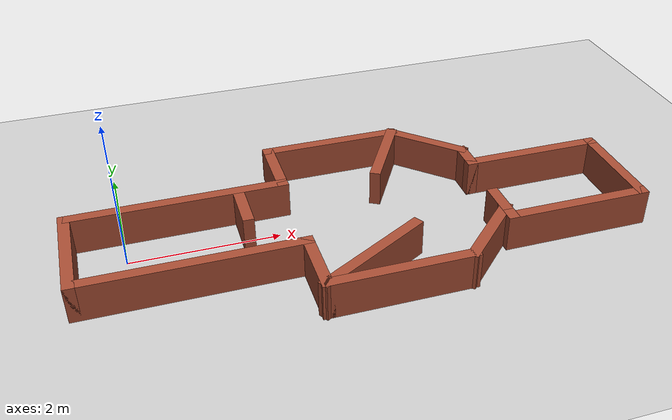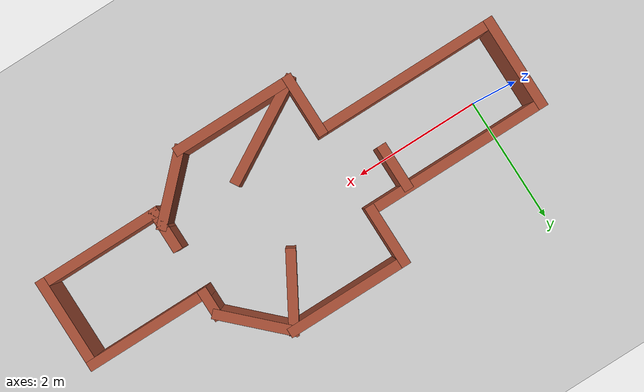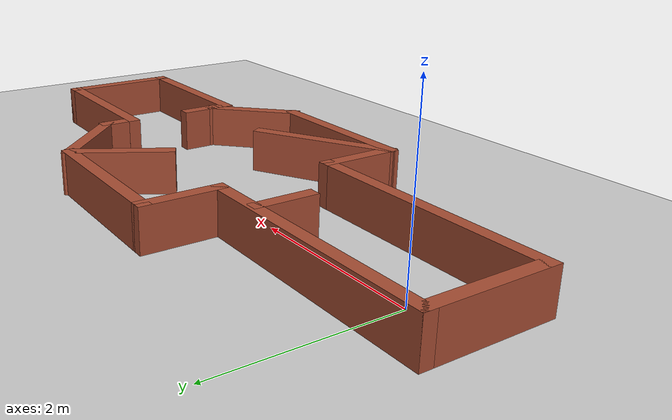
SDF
<sdf version="1.4">
  <world name="default">

    <scene>
      <ambient>0.4 0.4 0.4 1</ambient>
      <background>0.7 0.7 0.7 1</background>
      <shadows>true</shadows>
    </scene>

    <!-- A global light source -->
    <include>
      <uri>model://sun</uri>
    </include>

    <!-- A ground plane -->
    <include>
      <uri>model://ground_plane</uri>
    </include>

    <!-- Our world -->
    <include>
      <uri>model://room0</uri>
    </include>

    <physics type="ode">
      <real_time_update_rate>1000.0</real_time_update_rate>
      <max_step_size>0.001</max_step_size>
      <real_time_factor>1</real_time_factor>
      <ode>
        <solver>
          <type>quick</type>
          <iters>150</iters>
          <precon_iters>0</precon_iters>
          <sor>1.400000</sor>
          <use_dynamic_moi_rescaling>1</use_dynamic_moi_rescaling>
        </solver>
        <constraints>
          <cfm>0.00001</cfm>
          <erp>0.2</erp>
          <contact_max_correcting_vel>2000.000000</contact_max_correcting_vel>
          <contact_surface_layer>0.01000</contact_surface_layer>
        </constraints>
      </ode>
    </physics>
  </world>

</sdf>

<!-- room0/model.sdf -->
<sdf version='1.7'>
  <model name='room0'>
    <pose>3.00605 -0.176959 0 0 -0 0</pose>
    <link name='Wall_14'>
      <collision name='Wall_14_Collision'>
        <geometry>
          <box>
            <size>1 0.15 0.5</size>
          </box>
        </geometry>
        <pose>0 0 0.25 0 -0 0</pose>
      </collision>
      <visual name='Wall_14_Visual'>
        <pose>0 0 0.25 0 -0 0</pose>
        <geometry>
          <box>
            <size>1 0.15 0.5</size>
          </box>
        </geometry>
        <material>
          <script>
            <uri>file://media/materials/scripts/gazebo.material</uri>
            <name>Gazebo/Bricks</name>
          </script>
          <ambient>1 1 1 1</ambient>
        </material>
        <meta>
          <layer>0</layer>
        </meta>
      </visual>
      <pose>-0.834046 -1.10004 0 0 -0 -1.5708</pose>
    </link>
    <link name='Wall_19'>
      <collision name='Wall_19_Collision'>
        <geometry>
          <box>
            <size>1 0.15 0.5</size>
          </box>
        </geometry>
        <pose>0 0 0.25 0 -0 0</pose>
      </collision>
      <visual name='Wall_19_Visual'>
        <pose>0 0 0.25 0 -0 0</pose>
        <geometry>
          <box>
            <size>1 0.15 0.5</size>
          </box>
        </geometry>
        <material>
          <script>
            <uri>file://media/materials/scripts/gazebo.material</uri>
            <name>Gazebo/Bricks</name>
          </script>
          <ambient>1 1 1 1</ambient>
        </material>
        <meta>
          <layer>0</layer>
        </meta>
      </visual>
      <pose>-0.834046 1.09996 0 0 -0 1.5708</pose>
    </link>
    <link name='Wall_20'>
      <collision name='Wall_20_Collision'>
        <geometry>
          <box>
            <size>2 0.15 0.5</size>
          </box>
        </geometry>
        <pose>0 0 0.25 0 -0 0</pose>
      </collision>
      <visual name='Wall_20_Visual'>
        <pose>0 0 0.25 0 -0 0</pose>
        <geometry>
          <box>
            <size>2 0.15 0.5</size>
          </box>
        </geometry>
        <material>
          <script>
            <uri>file://media/materials/scripts/gazebo.material</uri>
            <name>Gazebo/Bricks</name>
          </script>
          <ambient>1 1 1 1</ambient>
        </material>
        <meta>
          <layer>0</layer>
        </meta>
      </visual>
      <pose>0.090954 1.52496 0 0 -0 0</pose>
    </link>
    <link name='Wall_21'>
      <collision name='Wall_21_Collision'>
        <geometry>
          <box>
            <size>1.26449 0.15 0.5</size>
          </box>
        </geometry>
        <pose>0 0 0.25 0 -0 0</pose>
      </collision>
      <visual name='Wall_21_Visual'>
        <pose>0 0 0.25 0 -0 0</pose>
        <geometry>
          <box>
            <size>1.26449 0.15 0.5</size>
          </box>
        </geometry>
        <material>
          <script>
            <uri>file://media/materials/scripts/gazebo.material</uri>
            <name>Gazebo/Bricks</name>
          </script>
          <ambient>1 1 1 1</ambient>
        </material>
        <meta>
          <layer>0</layer>
        </meta>
      </visual>
      <pose>1.41495 1.13596 0 0 -0 -0.772709</pose>
    </link>
    <link name='Wall_23'>
      <collision name='Wall_23_Collision'>
        <geometry>
          <box>
            <size>2 0.15 0.5</size>
          </box>
        </geometry>
        <pose>0 0 0.25 0 -0 0</pose>
      </collision>
      <visual name='Wall_23_Visual'>
        <pose>0 0 0.25 0 -0 0</pose>
        <geometry>
          <box>
            <size>2 0.15 0.5</size>
          </box>
        </geometry>
        <material>
          <script>
            <uri>file://media/materials/scripts/gazebo.material</uri>
            <name>Gazebo/Bricks</name>
          </script>
          <ambient>1 1 1 1</ambient>
        </material>
        <meta>
          <layer>0</layer>
        </meta>
      </visual>
      <pose>0.090954 -1.52504 0 0 -0 0</pose>
    </link>
    <link name='Wall_24'>
      <collision name='Wall_24_Collision'>
        <geometry>
          <box>
            <size>1.25 0.15 0.5</size>
          </box>
        </geometry>
        <pose>0 0 0.25 0 -0 0</pose>
      </collision>
      <visual name='Wall_24_Visual'>
        <pose>0 0 0.25 0 -0 0</pose>
        <geometry>
          <box>
            <size>1.25 0.15 0.5</size>
          </box>
        </geometry>
        <material>
          <script>
            <uri>file://media/materials/scripts/gazebo.material</uri>
            <name>Gazebo/Bricks</name>
          </script>
          <ambient>1 1 1 1</ambient>
        </material>
        <meta>
          <layer>0</layer>
        </meta>
      </visual>
      <pose>1.40495 -1.13604 0 0 -0 0.785398</pose>
    </link>
    <link name='Wall_25'>
      <collision name='Wall_25_Collision'>
        <geometry>
          <box>
            <size>0.5 0.15 0.5</size>
          </box>
        </geometry>
        <pose>0 0 0.25 0 -0 0</pose>
      </collision>
      <visual name='Wall_25_Visual'>
        <pose>0 0 0.25 0 -0 0</pose>
        <geometry>
          <box>
            <size>0.5 0.15 0.5</size>
          </box>
        </geometry>
        <material>
          <script>
            <uri>file://media/materials/scripts/gazebo.material</uri>
            <name>Gazebo/Bricks</name>
          </script>
          <ambient>1 1 1 1</ambient>
        </material>
        <meta>
          <layer>0</layer>
        </meta>
      </visual>
      <pose>1.79395 -0.572041 0 0 -0 1.5708</pose>
    </link>
    <link name='Wall_27'>
      <collision name='Wall_27_Collision'>
        <geometry>
          <box>
            <size>0.5 0.15 0.5</size>
          </box>
        </geometry>
        <pose>0 0 0.25 0 -0 0</pose>
      </collision>
      <visual name='Wall_27_Visual'>
        <pose>0 0 0.25 0 -0 0</pose>
        <geometry>
          <box>
            <size>0.5 0.15 0.5</size>
          </box>
        </geometry>
        <material>
          <script>
            <uri>file://media/materials/scripts/gazebo.material</uri>
            <name>Gazebo/Bricks</name>
          </script>
          <ambient>1 1 1 1</ambient>
        </material>
        <meta>
          <layer>0</layer>
        </meta>
      </visual>
      <pose>1.81395 0.571959 0 0 -0 -1.5708</pose>
    </link>
    <link name='Wall_37'>
      <collision name='Wall_37_Collision'>
        <geometry>
          <box>
            <size>1.25 0.15 0.5</size>
          </box>
        </geometry>
        <pose>0 0 0.25 0 -0 0</pose>
      </collision>
      <visual name='Wall_37_Visual'>
        <pose>0 0 0.25 0 -0 0</pose>
        <geometry>
          <box>
            <size>1.25 0.15 0.5</size>
          </box>
        </geometry>
        <material>
          <script>
            <uri>file://media/materials/scripts/gazebo.material</uri>
            <name>Gazebo/Bricks</name>
          </script>
          <ambient>1 1 1 1</ambient>
        </material>
        <meta>
          <layer>0</layer>
        </meta>
      </visual>
      <pose>0.740954 1.04846 0 0 -0 -2.09423</pose>
    </link>
    <link name='Wall_39'>
      <collision name='Wall_39_Collision'>
        <geometry>
          <box>
            <size>1.75 0.15 0.5</size>
          </box>
        </geometry>
        <pose>0 0 0.25 0 -0 0</pose>
      </collision>
      <visual name='Wall_39_Visual'>
        <pose>0 0 0.25 0 -0 0</pose>
        <geometry>
          <box>
            <size>1.75 0.15 0.5</size>
          </box>
        </geometry>
        <material>
          <script>
            <uri>file://media/materials/scripts/gazebo.material</uri>
            <name>Gazebo/Bricks</name>
          </script>
          <ambient>1 1 1 1</ambient>
        </material>
        <meta>
          <layer>0</layer>
        </meta>
      </visual>
      <pose>-0.141046 -1.12504 0 0 -0 0.523487</pose>
    </link>
    <link name='Wall_41'>
      <collision name='Wall_41_Collision'>
        <geometry>
          <box>
            <size>0.75 0.15 0.5</size>
          </box>
        </geometry>
        <pose>0 0 0.25 0 -0 0</pose>
      </collision>
      <visual name='Wall_41_Visual'>
        <pose>0 0 0.25 0 -0 0</pose>
        <geometry>
          <box>
            <size>0.75 0.15 0.5</size>
          </box>
        </geometry>
        <material>
          <script>
            <uri>file://media/materials/scripts/gazebo.material</uri>
            <name>Gazebo/Bricks</name>
          </script>
          <ambient>1 1 1 1</ambient>
        </material>
        <meta>
          <layer>0</layer>
        </meta>
      </visual>
      <pose>-1.44405 0.334959 0 0 -0 -1.5708</pose>
    </link>
    <link name='Wall_43'>
      <collision name='Wall_43_Collision'>
        <geometry>
          <box>
            <size>2.02018 0.15 0.5</size>
          </box>
        </geometry>
        <pose>0 0 0.25 0 -0 0</pose>
      </collision>
      <visual name='Wall_43_Visual'>
        <pose>0 0 0.25 0 -0 0</pose>
        <geometry>
          <box>
            <size>2.02018 0.15 0.5</size>
          </box>
        </geometry>
        <material>
          <script>
            <uri>file://media/materials/scripts/gazebo.material</uri>
            <name>Gazebo/Bricks</name>
          </script>
          <ambient>1 1 1 1</ambient>
        </material>
        <meta>
          <layer>0</layer>
        </meta>
      </visual>
      <pose>2.74895 0.396959 0 0 -0 0</pose>
    </link>
    <link name='Wall_44'>
      <collision name='Wall_44_Collision'>
        <geometry>
          <box>
            <size>1.5 0.15 0.5</size>
          </box>
        </geometry>
        <pose>0 0 0.25 0 -0 0</pose>
      </collision>
      <visual name='Wall_44_Visual'>
        <pose>0 0 0.25 0 -0 0</pose>
        <geometry>
          <box>
            <size>1.5 0.15 0.5</size>
          </box>
        </geometry>
        <material>
          <script>
            <uri>file://media/materials/scripts/gazebo.material</uri>
            <name>Gazebo/Bricks</name>
          </script>
          <ambient>1 1 1 1</ambient>
        </material>
        <meta>
          <layer>0</layer>
        </meta>
      </visual>
      <pose>3.68395 -0.278041 0 0 -0 -1.5708</pose>
    </link>
    <link name='Wall_45'>
      <collision name='Wall_45_Collision'>
        <geometry>
          <box>
            <size>2.04 0.15 0.5</size>
          </box>
        </geometry>
        <pose>0 0 0.25 0 -0 0</pose>
      </collision>
      <visual name='Wall_45_Visual'>
        <pose>0 0 0.25 0 -0 0</pose>
        <geometry>
          <box>
            <size>2.04 0.15 0.5</size>
          </box>
        </geometry>
        <material>
          <script>
            <uri>file://media/materials/scripts/gazebo.material</uri>
            <name>Gazebo/Bricks</name>
          </script>
          <ambient>1 1 1 1</ambient>
        </material>
        <meta>
          <layer>0</layer>
        </meta>
      </visual>
      <pose>2.73895 -0.953041 0 0 -0 3.14159</pose>
    </link>
    <link name='Wall_46'>
      <collision name='Wall_46_Collision'>
        <geometry>
          <box>
            <size>0.355635 0.15 0.5</size>
          </box>
        </geometry>
        <pose>0 0 0.25 0 -0 0</pose>
      </collision>
      <visual name='Wall_46_Visual'>
        <pose>0 0 0.25 0 -0 0</pose>
        <geometry>
          <box>
            <size>0.355635 0.15 0.5</size>
          </box>
        </geometry>
        <material>
          <script>
            <uri>file://media/materials/scripts/gazebo.material</uri>
            <name>Gazebo/Bricks</name>
          </script>
          <ambient>1 1 1 1</ambient>
        </material>
        <meta>
          <layer>0</layer>
        </meta>
      </visual>
      <pose>1.79395 -0.850041 0 0 -0 1.5708</pose>
    </link>
    <link name='Wall_6'>
      <collision name='Wall_6_Collision'>
        <geometry>
          <box>
            <size>1.5 0.15 0.5</size>
          </box>
        </geometry>
        <pose>0 0 0.25 0 -0 0</pose>
      </collision>
      <visual name='Wall_6_Visual'>
        <pose>0 0 0.25 0 -0 0</pose>
        <geometry>
          <box>
            <size>1.5 0.15 0.5</size>
          </box>
        </geometry>
        <material>
          <script>
            <uri>file://media/materials/scripts/gazebo.material</uri>
            <name>Gazebo/Bricks</name>
          </script>
          <ambient>1 1 1 1</ambient>
        </material>
        <meta>
          <layer>0</layer>
        </meta>
      </visual>
      <pose>-3.68405 -4.1e-05 0 0 -0 -1.5708</pose>
    </link>
    <link name='Wall_7'>
      <collision name='Wall_7_Collision'>
        <geometry>
          <box>
            <size>3 0.15 0.5</size>
          </box>
        </geometry>
        <pose>0 0 0.25 0 -0 0</pose>
      </collision>
      <visual name='Wall_7_Visual'>
        <pose>0 0 0.25 0 -0 0</pose>
        <geometry>
          <box>
            <size>3 0.15 0.5</size>
          </box>
        </geometry>
        <material>
          <script>
            <uri>file://media/materials/scripts/gazebo.material</uri>
            <name>Gazebo/Bricks</name>
          </script>
          <ambient>1 1 1 1</ambient>
        </material>
        <meta>
          <layer>0</layer>
        </meta>
      </visual>
      <pose>-2.25905 -0.675041 0 0 -0 0</pose>
    </link>
    <link name='Wall_9'>
      <collision name='Wall_9_Collision'>
        <geometry>
          <box>
            <size>3 0.15 0.5</size>
          </box>
        </geometry>
        <pose>0 0 0.25 0 -0 0</pose>
      </collision>
      <visual name='Wall_9_Visual'>
        <pose>0 0 0.25 0 -0 0</pose>
        <geometry>
          <box>
            <size>3 0.15 0.5</size>
          </box>
        </geometry>
        <material>
          <script>
            <uri>file://media/materials/scripts/gazebo.material</uri>
            <name>Gazebo/Bricks</name>
          </script>
          <ambient>1 1 1 1</ambient>
        </material>
        <meta>
          <layer>0</layer>
        </meta>
      </visual>
      <pose>-2.25905 0.674959 0 0 -0 0</pose>
    </link>
    <static>1</static>
  </model>
</sdf>
